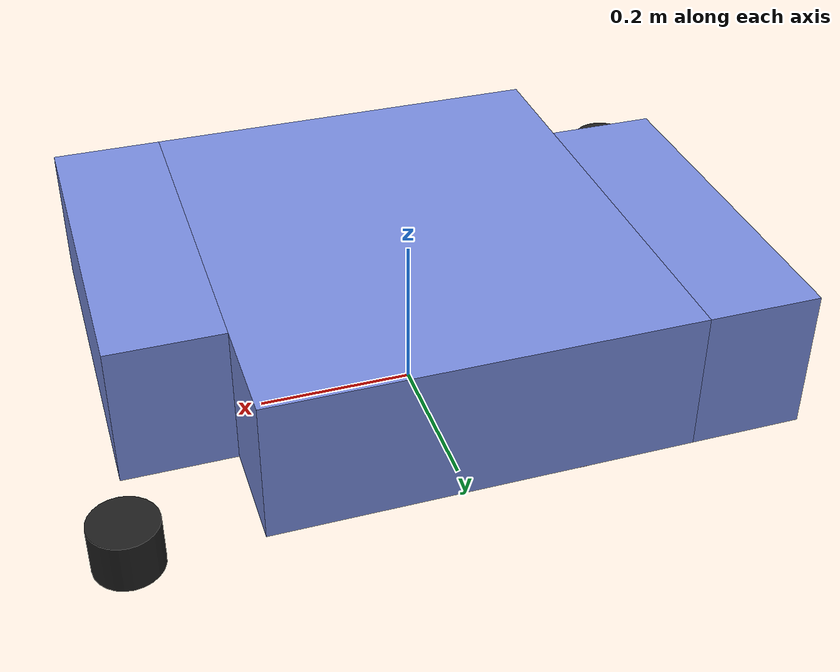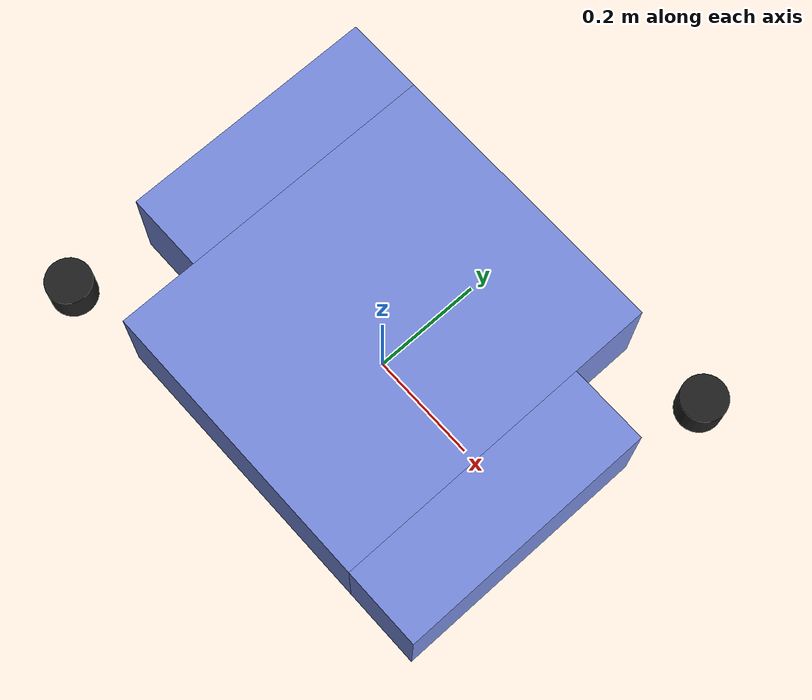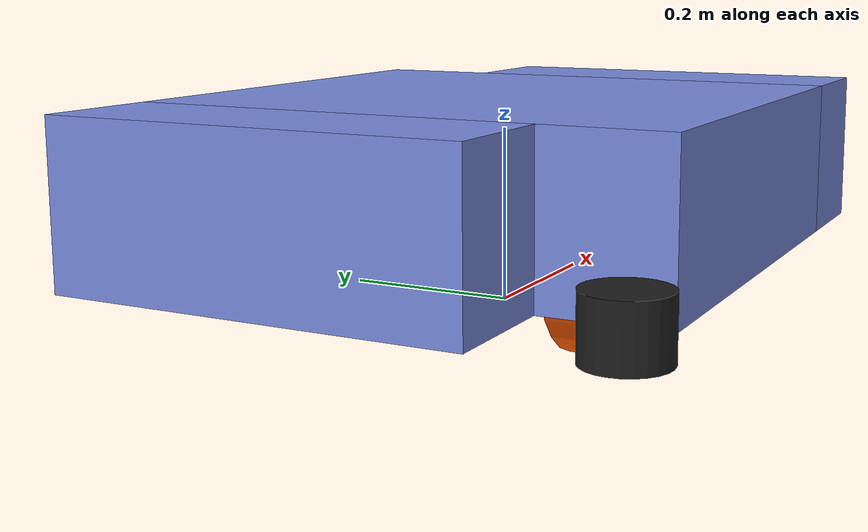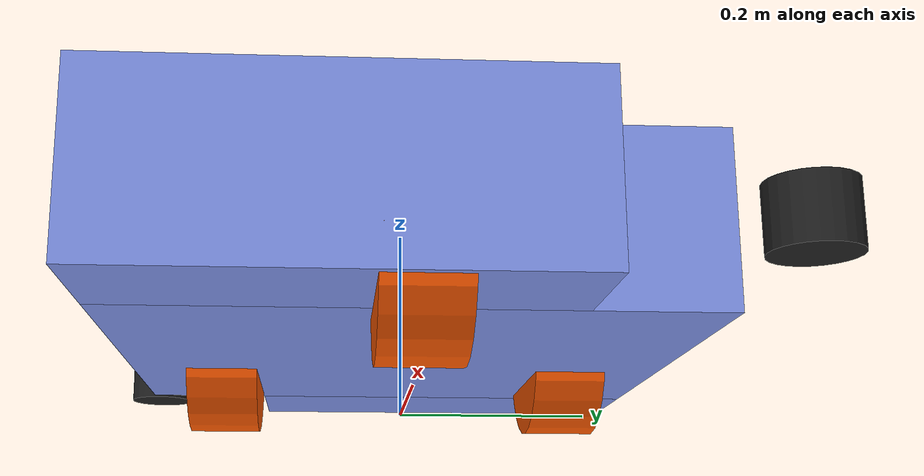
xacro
<?xml version="1.0"?>
<robot xmlns:xacro="http://www.ros.org/wiki/xacro" name="three_wheel_agv">

  <!-- ==================== Base Footprint ==================== -->
  <link name="base_footprint">
  </link>

  <joint name="base_footprint_joint" type="fixed">
    <parent link="base_footprint" />
    <child link="base_link" />
    <origin xyz="0 0 0.15" rpy="0 0 0" />
  </joint>

  <!-- ==================== Base Link（角镂空底盘） ==================== -->
  <!-- 外形整体仍是 0.8 x 0.6 x 0.18，但左前 / 右后角整块镂空：
       中条(x -0.26~0.26 全宽) + 前条(x 0.26~0.40, y -0.30~0.16)
       + 后条(x -0.40~-0.26, y -0.16~0.30) 三块 box 拼接。
       角部镂空仅减少约 8% 体积，质量/惯量仍按整箱 60kg 保守取值。 -->
  <link name="base_link">
    <inertial>
      <origin xyz="0 0 0" rpy="0 0 0" />
      <mass value="60.0" />
      <!-- 惯量按整箱 0.8 x 0.6 x 0.18 公式计算（Ixx=m/12*(y²+z²) 等） -->
      <inertia ixx="1.96" ixy="0.0" ixz="0.0" iyy="3.36" iyz="0.0" izz="5.0" />
    </inertial>

    <!-- 中条：x -0.26 ~ 0.26，全宽 -->
    <visual>
      <origin xyz="0 0 0" rpy="0 0 0" />
      <geometry>
        <box size="0.52 0.6 0.18" />
      </geometry>
      <material name="light_indigo">
        <color rgba="0.471 0.549 0.871 1.0" />
      </material>
    </visual>
    <collision>
      <origin xyz="0 0 0" rpy="0 0 0" />
      <geometry>
        <box size="0.52 0.6 0.18" />
      </geometry>
    </collision>

    <!-- 前条：x 0.26 ~ 0.40，y -0.30 ~ 0.16（左前角镂空） -->
    <visual>
      <origin xyz="0.33 -0.07 0" rpy="0 0 0" />
      <geometry>
        <box size="0.14 0.46 0.18" />
      </geometry>
      <material name="light_indigo" />
    </visual>
    <collision>
      <origin xyz="0.33 -0.07 0" rpy="0 0 0" />
      <geometry>
        <box size="0.14 0.46 0.18" />
      </geometry>
    </collision>

    <!-- 后条：x -0.40 ~ -0.26，y -0.16 ~ 0.30（右后角镂空） -->
    <visual>
      <origin xyz="-0.33 0.07 0" rpy="0 0 0" />
      <geometry>
        <box size="0.14 0.46 0.18" />
      </geometry>
      <material name="light_indigo" />
    </visual>
    <collision>
      <origin xyz="-0.33 0.07 0" rpy="0 0 0" />
      <geometry>
        <box size="0.14 0.46 0.18" />
      </geometry>
    </collision>
  </link>

  <!-- ==================== IMU ==================== -->
  <link name="imu_link">
    <inertial>
      <origin xyz="0 0 0" rpy="0 0 0" />
      <mass value="0.01" />
      <inertia ixx="0.0001" ixy="0.0" ixz="0.0" iyy="0.0001" iyz="0.0" izz="0.0001" />
    </inertial>
    <visual>
      <origin xyz="0 0 0" rpy="0 0 0" />
      <geometry>
        <box size="0.04 0.04 0.02" />
      </geometry>
      <material name="purple">
        <color rgba="0.8 0.0 0.8 1.0" />
      </material>
    </visual>
  </link>

  <joint name="imu_joint" type="fixed">
    <parent link="base_link" />
    <child link="imu_link" />
    <origin xyz="0 0 0" rpy="0 0 0" />
  </joint>

  <!-- ==================== 2D Lidar 双雷达（左前 + 右后斜对角，低位角装） ==================== -->
  <!-- 半径 0.04 的短圆柱雷达体，中心凸出底盘角 1cm（见文件头几何说明），
       z=-0.045 使扫描面离地 0.105m、雷达体(0.075~0.135m)镶在角位高度。
       左前雷达朝外 +45°(yaw=0.7854)，右后雷达朝外 -135°(yaw=-2.3562)。 -->
  <link name="front_left_lidar_link">
    <inertial>
      <origin xyz="0 0 0" rpy="0 0 0" />
      <mass value="0.2" />
      <inertia ixx="0.001" ixy="0.0" ixz="0.0" iyy="0.001" iyz="0.0" izz="0.001" />
    </inertial>
    <visual>
      <origin xyz="0 0 0" rpy="0 0 0" />
      <geometry>
        <cylinder radius="0.04" length="0.06" />
      </geometry>
      <material name="lidar_body">
        <color rgba="0.12 0.12 0.12 1.0" />
      </material>
    </visual>
  </link>

  <joint name="front_left_lidar_joint" type="fixed">
    <parent link="base_link" />
    <child link="front_left_lidar_link" />
    <origin xyz="0.41 0.31 -0.045" rpy="0 0 0.7854" />
  </joint>

  <link name="rear_right_lidar_link">
    <inertial>
      <origin xyz="0 0 0" rpy="0 0 0" />
      <mass value="0.2" />
      <inertia ixx="0.001" ixy="0.0" ixz="0.0" iyy="0.001" iyz="0.0" izz="0.001" />
    </inertial>
    <visual>
      <origin xyz="0 0 0" rpy="0 0 0" />
      <geometry>
        <cylinder radius="0.04" length="0.06" />
      </geometry>
      <material name="lidar_body" />
    </visual>
  </link>

  <joint name="rear_right_lidar_joint" type="fixed">
    <parent link="base_link" />
    <child link="rear_right_lidar_link" />
    <origin xyz="-0.41 -0.31 -0.045" rpy="0 0 -2.3562" />
  </joint>

  <!-- ==================== Front Steering Module ==================== -->
  <link name="wheel_front_steering_link">
    <inertial>
      <origin xyz="0 0 0" rpy="0 0 0" />
      <mass value="1.5" />
      <inertia ixx="0.0045" ixy="0.0" ixz="0.0" iyy="0.0045" iyz="0.0" izz="0.0075" />
    </inertial>
    <visual>
      <origin xyz="0 0 0" rpy="0 0 0" />
      <geometry>
        <cylinder radius="0.03" length="0.06" />
      </geometry>
      <material name="grey">
        <color rgba="0.5 0.5 0.5 1.0" />
      </material>
    </visual>
  </link>

  <joint name="wheel_front_steering_joint" type="revolute">
    <parent link="base_link" />
    <child link="wheel_front_steering_link" />
    <origin xyz="0.3 0.0 -0.05" rpy="0 0 0" />
    <axis xyz="0 0 1" />
    <limit lower="-1.5708" upper="1.5708" effort="100.0" velocity="5.0" />
  </joint>

  <link name="wheel_front_wheel_link">
    <inertial>
      <origin xyz="0 0 0" rpy="0 0 0" />
      <mass value="3.0" />
      <inertia ixx="0.0091" ixy="0.0" ixz="0.0" iyy="0.0091" iyz="0.0" izz="0.015" />
    </inertial>
    <visual>
      <origin xyz="0 0 0" rpy="1.5708 0 0" />
      <geometry>
        <cylinder radius="0.1" length="0.08" />
      </geometry>
      <material name="orange_wheel">
        <color rgba="1.0 0.35 0.0 1.0" />
      </material>
    </visual>
    <collision>
      <origin xyz="0 0 0" rpy="1.5708 0 0" />
      <geometry>
        <cylinder radius="0.1" length="0.08" />
      </geometry>
    </collision>
  </link>

  <joint name="wheel_front_wheel_joint" type="revolute">
    <parent link="wheel_front_steering_link" />
    <child link="wheel_front_wheel_link" />
    <origin xyz="0.0 0.0 0.0" rpy="0 0 0" />
    <axis xyz="0 1 0" />
    <limit lower="-1e9" upper="1e9" effort="10.0" velocity="18.0" />
  </joint>

  <!-- ==================== Left Steering Module ==================== -->
  <link name="wheel_left_steering_link">
    <inertial>
      <origin xyz="0 0 0" rpy="0 0 0" />
      <mass value="1.5" />
      <inertia ixx="0.0045" ixy="0.0" ixz="0.0" iyy="0.0045" iyz="0.0" izz="0.0075" />
    </inertial>
    <visual>
      <origin xyz="0 0 0" rpy="0 0 0" />
      <geometry>
        <cylinder radius="0.03" length="0.06" />
      </geometry>
      <material name="grey" />
    </visual>
  </link>

  <joint name="wheel_left_steering_joint" type="revolute">
    <parent link="base_link" />
    <child link="wheel_left_steering_link" />
    <origin xyz="-0.15 0.20 -0.05" rpy="0 0 0" />
    <axis xyz="0 0 1" />
    <limit lower="-1.5708" upper="1.5708" effort="100.0" velocity="5.0" />
  </joint>

  <link name="wheel_left_wheel_link">
    <inertial>
      <origin xyz="0 0 0" rpy="0 0 0" />
      <mass value="3.0" />
      <inertia ixx="0.0091" ixy="0.0" ixz="0.0" iyy="0.0091" iyz="0.0" izz="0.015" />
    </inertial>
    <visual>
      <origin xyz="0 0 0" rpy="1.5708 0 0" />
      <geometry>
        <cylinder radius="0.1" length="0.08" />
      </geometry>
      <material name="orange_wheel">
        <color rgba="1.0 0.35 0.0 1.0" />
      </material>
    </visual>
    <collision>
      <origin xyz="0 0 0" rpy="1.5708 0 0" />
      <geometry>
        <cylinder radius="0.1" length="0.08" />
      </geometry>
    </collision>
  </link>

  <joint name="wheel_left_wheel_joint" type="revolute">
    <parent link="wheel_left_steering_link" />
    <child link="wheel_left_wheel_link" />
    <origin xyz="0.0 0.0 0.0" rpy="0 0 0" />
    <axis xyz="0 1 0" />
    <limit lower="-1e9" upper="1e9" effort="10.0" velocity="18.0" />
  </joint>

  <!-- ==================== Right Steering Module ==================== -->
  <link name="wheel_right_steering_link">
    <inertial>
      <origin xyz="0 0 0" rpy="0 0 0" />
      <mass value="1.5" />
      <inertia ixx="0.0045" ixy="0.0" ixz="0.0" iyy="0.0045" iyz="0.0" izz="0.0075" />
    </inertial>
    <visual>
      <origin xyz="0 0 0" rpy="0 0 0" />
      <geometry>
        <cylinder radius="0.03" length="0.06" />
      </geometry>
      <material name="grey" />
    </visual>
  </link>

  <joint name="wheel_right_steering_joint" type="revolute">
    <parent link="base_link" />
    <child link="wheel_right_steering_link" />
    <origin xyz="-0.15 -0.20 -0.05" rpy="0 0 0" />
    <axis xyz="0 0 1" />
    <limit lower="-1.5708" upper="1.5708" effort="100.0" velocity="5.0" />
  </joint>

  <link name="wheel_right_wheel_link">
    <inertial>
      <origin xyz="0 0 0" rpy="0 0 0" />
      <mass value="3.0" />
      <inertia ixx="0.0091" ixy="0.0" ixz="0.0" iyy="0.0091" iyz="0.0" izz="0.015" />
    </inertial>
    <visual>
      <origin xyz="0 0 0" rpy="1.5708 0 0" />
      <geometry>
        <cylinder radius="0.1" length="0.08" />
      </geometry>
      <material name="orange_wheel">
        <color rgba="1.0 0.35 0.0 1.0" />
      </material>
    </visual>
    <collision>
      <origin xyz="0 0 0" rpy="1.5708 0 0" />
      <geometry>
        <cylinder radius="0.1" length="0.08" />
      </geometry>
    </collision>
  </link>

  <joint name="wheel_right_wheel_joint" type="revolute">
    <parent link="wheel_right_steering_link" />
    <child link="wheel_right_wheel_link" />
    <origin xyz="0.0 0.0 0.0" rpy="0 0 0" />
    <axis xyz="0 1 0" />
    <limit lower="-1e9" upper="1e9" effort="10.0" velocity="18.0" />
  </joint>

  <!-- ==================== ros2_control ==================== -->
  <ros2_control name="IgnitionSystem" type="system">
    <hardware>
      <plugin>ign_ros2_control/IgnitionSystem</plugin>
    </hardware>
    <joint name="wheel_front_steering_joint">
      <command_interface name="position" />
      <state_interface name="position" />
      <state_interface name="velocity" />
    </joint>
    <joint name="wheel_left_steering_joint">
      <command_interface name="position" />
      <state_interface name="position" />
      <state_interface name="velocity" />
    </joint>
    <joint name="wheel_right_steering_joint">
      <command_interface name="position" />
      <state_interface name="position" />
      <state_interface name="velocity" />
    </joint>
    <joint name="wheel_front_wheel_joint">
      <command_interface name="velocity" />
      <state_interface name="position" />
      <state_interface name="velocity" />
    </joint>
    <joint name="wheel_left_wheel_joint">
      <command_interface name="velocity" />
      <state_interface name="position" />
      <state_interface name="velocity" />
    </joint>
    <joint name="wheel_right_wheel_joint">
      <command_interface name="velocity" />
      <state_interface name="position" />
      <state_interface name="velocity" />
    </joint>
  </ros2_control>

  <!-- ==================== Gazebo Plugins ==================== -->
  <gazebo>
    <plugin filename="ign_ros2_control-system" name="ign_ros2_control::IgnitionROS2ControlPlugin">
      <parameters>$(find simulated_chassis)/param/three_wheel_controllers.yaml</parameters>
      <robot_param>robot_description</robot_param>
      <robot_param_node>robot_state_publisher</robot_param_node>
    </plugin>
    <plugin filename="ignition-gazebo-sensors-system" name="ignition::gazebo::systems::Sensors">
    </plugin>
    <plugin name="ignition::gazebo::systems::Imu" filename="ignition-gazebo-imu-system"></plugin>
  </gazebo>

  <!-- ==================== IMU Sensor ==================== -->
  <gazebo reference="imu_link">
    <sensor name="imu_sensor" type="imu">
      <always_on>true</always_on>
      <update_rate>100</update_rate>
      <visualize>false</visualize>
      <topic>/imu</topic>
      <ignition_frame_id>imu_link</ignition_frame_id>

      <imu>
        <frame_id>imu_link</frame_id>

        <!-- 角速度：白噪声密度约 0.01°/s/√Hz，
           100Hz 下每采样 σ≈0.001 rad/s (0.057°/s)；
           上电零偏 σ≈0.002°/s (3.5e-5 rad/s)；
           零偏随机游走 10°/hr，相关时间 1000s -->
        <angular_velocity>
          <x>
            <noise type="gaussian">
              <mean>0.0</mean>
              <stddev>0.001</stddev>
              <bias_mean>0.0</bias_mean>
              <bias_stddev>0.00005</bias_stddev>
              <dynamic_bias_stddev>0.00005</dynamic_bias_stddev>
              <dynamic_bias_correlation_time>1000.0</dynamic_bias_correlation_time>
            </noise>
          </x>
          <y>
            <noise type="gaussian">
              <mean>0.0</mean>
              <stddev>0.001</stddev>
              <bias_mean>0.0</bias_mean>
              <bias_stddev>0.00005</bias_stddev>
              <dynamic_bias_stddev>0.00005</dynamic_bias_stddev>
              <dynamic_bias_correlation_time>1000.0</dynamic_bias_correlation_time>
            </noise>
          </y>
          <z>
            <noise type="gaussian">
              <mean>0.0</mean>
              <stddev>0.001</stddev>
              <bias_mean>0.0</bias_mean>
              <bias_stddev>0.00005</bias_stddev>
              <dynamic_bias_stddev>0.00005</dynamic_bias_stddev>
              <dynamic_bias_correlation_time>1000.0</dynamic_bias_correlation_time>
            </noise>
          </z>
        </angular_velocity>

        <!-- 线加速度：白噪声密度约 60µg/√Hz，
           100Hz 下每采样 σ≈0.0006 m/s²；
           上电零偏 σ≈0.00015 m/s² (15µg)；
           零偏随机游走 0.05mg，相关时间 1000s -->
        <linear_acceleration>
          <x>
            <noise type="gaussian">
              <mean>0.0</mean>
              <stddev>0.0006</stddev>
              <bias_mean>0.0</bias_mean>
              <bias_stddev>0.00015</bias_stddev>
              <dynamic_bias_stddev>0.0002</dynamic_bias_stddev>
              <dynamic_bias_correlation_time>1000.0</dynamic_bias_correlation_time>
            </noise>
          </x>
          <y>
            <noise type="gaussian">
              <mean>0.0</mean>
              <stddev>0.0006</stddev>
              <bias_mean>0.0</bias_mean>
              <bias_stddev>0.00015</bias_stddev>
              <dynamic_bias_stddev>0.0002</dynamic_bias_stddev>
              <dynamic_bias_correlation_time>1000.0</dynamic_bias_correlation_time>
            </noise>
          </y>
          <z>
            <noise type="gaussian">
              <mean>0.0</mean>
              <stddev>0.0006</stddev>
              <bias_mean>0.0</bias_mean>
              <bias_stddev>0.00015</bias_stddev>
              <dynamic_bias_stddev>0.0002</dynamic_bias_stddev>
              <dynamic_bias_correlation_time>1000.0</dynamic_bias_correlation_time>
            </noise>
          </z>
        </linear_acceleration>
      </imu>
    </sensor>
  </gazebo>

  <!-- ==================== 双 2D Lidar Sensor（TiM571 风格） ==================== -->
  <!-- 水平 270°/540 点/15Hz，垂直单波束（gpu_lidar 基础话题输出 LaserScan，
       /points 子话题仍有单层 PointCloud2 但不桥接、不使用）。
       range min 0.10：雷达体凸出底盘角安装，几何上无自打点，min 仅作为
       渲染近场杂点的保险（真机 2D 雷达 min 约 0.05~0.1m，量级一致）。 -->
  <!-- 左前雷达：朝外 +45° -->
  <gazebo reference="front_left_lidar_link">
    <sensor name="front_lidar_sensor" type="gpu_lidar">
      <always_on>true</always_on>
      <update_rate>15</update_rate>
      <visualize>true</visualize>
      <topic>/front_lidar/scan</topic>
      <ignition_frame_id>front_left_lidar_link</ignition_frame_id>

      <lidar>
        <frame_id>front_left_lidar_link</frame_id>
        <scan>
          <horizontal>
            <samples>540</samples>
            <resolution>1</resolution>
            <min_angle>-2.3562</min_angle>
            <max_angle>2.3562</max_angle>
          </horizontal>
          <vertical>
            <samples>1</samples>
            <min_angle>0</min_angle>
            <max_angle>0</max_angle>
          </vertical>
        </scan>
        <range>
          <min>0.10</min>
          <max>25.0</max>
          <resolution>0.01</resolution>
        </range>
        <noise>
          <type>gaussian</type>
          <mean>0.0</mean>
          <bias_mean>0.0</bias_mean>
          <bias_stddev>0.005</bias_stddev>
          <precision>0.01</precision>
          <stddev>0.010</stddev>
        </noise>
      </lidar>
    </sensor>
  </gazebo>

  <!-- 右后雷达：朝外 -135° -->
  <gazebo reference="rear_right_lidar_link">
    <sensor name="rear_lidar_sensor" type="gpu_lidar">
      <always_on>true</always_on>
      <update_rate>15</update_rate>
      <visualize>true</visualize>
      <topic>/rear_lidar/scan</topic>
      <ignition_frame_id>rear_right_lidar_link</ignition_frame_id>

      <lidar>
        <frame_id>rear_right_lidar_link</frame_id>
        <scan>
          <horizontal>
            <samples>540</samples>
            <resolution>1</resolution>
            <min_angle>-2.3562</min_angle>
            <max_angle>2.3562</max_angle>
          </horizontal>
          <vertical>
            <samples>1</samples>
            <min_angle>0</min_angle>
            <max_angle>0</max_angle>
          </vertical>
        </scan>
        <range>
          <min>0.10</min>
          <max>25.0</max>
          <resolution>0.01</resolution>
        </range>
        <noise>
          <type>gaussian</type>
          <mean>0.0</mean>
          <bias_mean>0.0</bias_mean>
          <bias_stddev>0.005</bias_stddev>
          <precision>0.01</precision>
          <stddev>0.010</stddev>
        </noise>
      </lidar>
    </sensor>
  </gazebo>

  <!-- 在 robot 标签的末尾，为每个车轮的 link 指定摩擦参数 -->
  <gazebo reference="wheel_front_wheel_link">
    <surface>
      <friction>
        <ode>
          <mu>0.8</mu>
          <mu2>0.6</mu2>
        </ode>
      </friction>
    </surface>
  </gazebo>

  <gazebo reference="wheel_left_wheel_link">
    <surface>
      <friction>
        <ode>
          <mu>0.8</mu>
          <mu2>0.6</mu2>
        </ode>
      </friction>
    </surface>
  </gazebo>

  <gazebo reference="wheel_right_wheel_link">
    <surface>
      <friction>
        <ode>
          <mu>0.8</mu>
          <mu2>0.6</mu2>
        </ode>
      </friction>
    </surface>
  </gazebo>

</robot>
